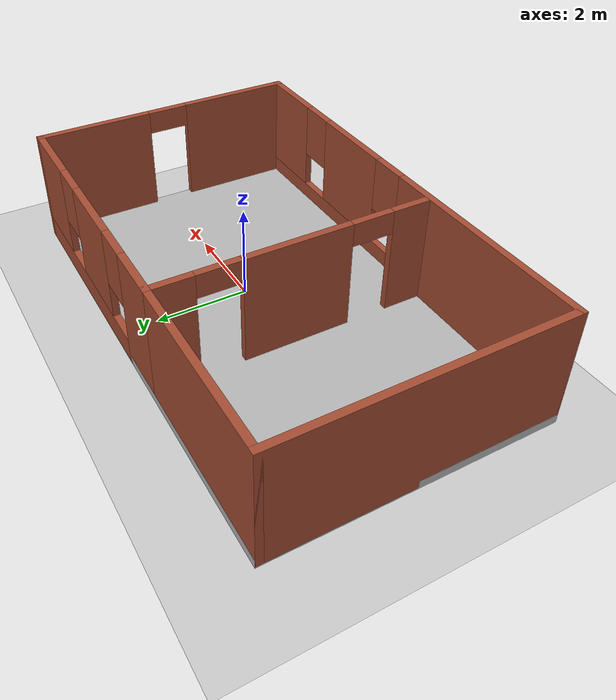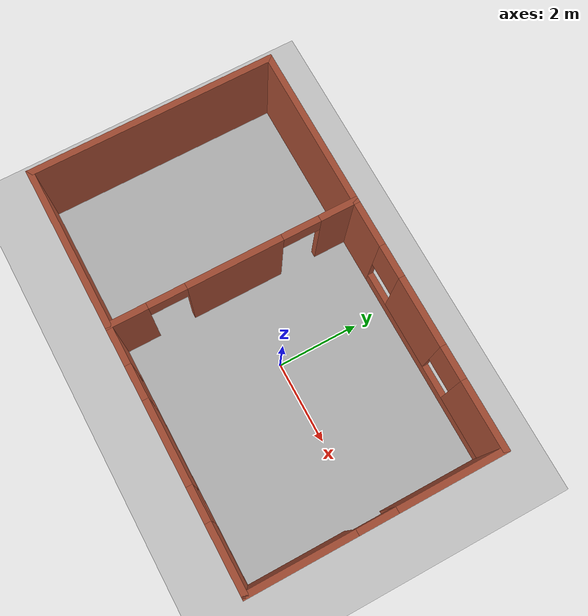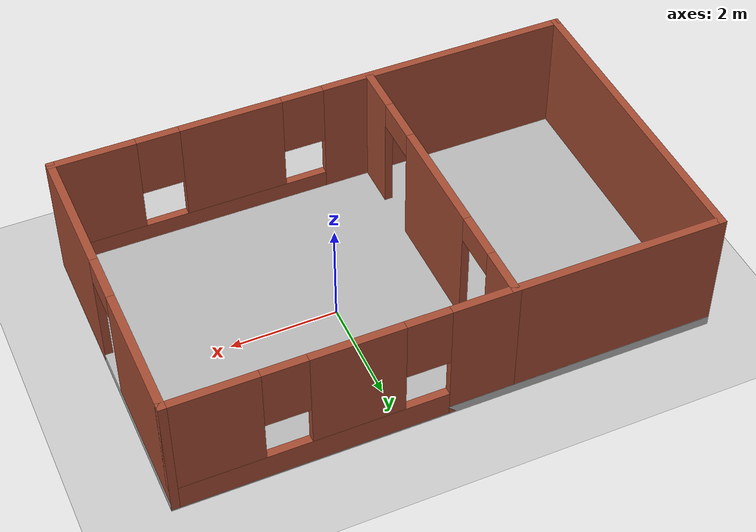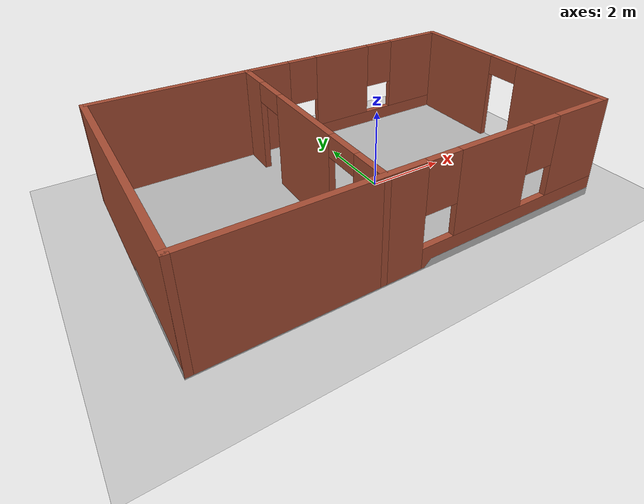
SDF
<sdf version="1.7">
 <world name="default">
  <model name="ground_plane">
   <static>1</static>
   <link name="link">
    <collision name="collision">
     <geometry><plane><normal>0 0 1</normal><size>100 100</size></plane></geometry>
     <surface><friction><ode><mu>100</mu><mu2>50</mu2></ode></friction></surface>
    </collision>
    <visual name="visual">
     <cast_shadows>0</cast_shadows>
     <geometry><plane><normal>0 0 1</normal><size>100 100</size></plane></geometry>
     <material>
      <script><uri>file://media/materials/scripts/gazebo.material</uri><name>Gazebo/Grey</name></script>
     </material>
    </visual>
   </link>
  </model>
  <gravity>0 0 -9.8</gravity>
  <magnetic_field>6e-06 2.3e-05 -4.2e-05</magnetic_field>
  <atmosphere type="adiabatic"/>
  <physics type="ode">
   <max_step_size>0.001</max_step_size>
   <real_time_factor>1</real_time_factor>
   <real_time_update_rate>1000</real_time_update_rate>
  </physics>
  <scene><ambient>0.4 0.4 0.4 1</ambient><background>0.7 0.7 0.7 1</background><shadows>1</shadows></scene>
  <audio><device>default</device></audio>
  <spherical_coordinates>
   <surface_model>EARTH_WGS84</surface_model>
   <latitude_deg>0</latitude_deg>
   <longitude_deg>0</longitude_deg>
   <elevation>0</elevation>
   <heading_deg>0</heading_deg>
  </spherical_coordinates>
  <model name="custom_wall">
   <static>1</static>
   <link name="link">
    <collision name="collision"><geometry><box><size>10 0.2 6</size></box></geometry></collision>
    <visual name="visual">
     <geometry><box><size>10 0.2 6</size></box></geometry>
     <material>
      <script>
       <uri>model://construction_floor/materials/scripts</uri>
       <uri>model://construction_floor/materials/textures</uri>
       <name>CustomWall/SandPattern</name>
      </script>
     </material>
    </visual>
   </link>
   <pose>-0.9 -0.1 0.075 -1.57 -0 3.14</pose>
  </model>
  <light name="sun" type="directional">
   <pose>5.02221 -1.38021 10 0 -0 0</pose>
   <diffuse>0.8 0.8 0.8 1</diffuse>
   <specular>0.2 0.2 0.2 1</specular>
   <attenuation>
    <range>1000</range>
    <constant>0.9</constant>
    <linear>0.01</linear>
    <quadratic>0.001</quadratic>
   </attenuation>
   <direction>-0.5 0.1 -0.9</direction>
  </light>
  <model name="construction_site">
   <pose>-0.9 -0.1 0.0175 0 -0 1.57</pose>
   <link name="Wall_0">
    <pose>-2.925 -0 0 0 -0 -1.5708</pose>
    <visual name="Wall_0_Visual_0">
     <pose>-2.5736 0 1.25 0 -0 0</pose>
     <geometry><box><size>4.8528 0.15 2.5</size></box></geometry>
     <material>
      <script><uri>file://media/materials/scripts/gazebo.material</uri><name>Gazebo/Bricks</name></script>
      <ambient>1 1 1 1</ambient>
     </material>
     <meta><layer>0</layer></meta>
    </visual>
    <collision name="Wall_0_Collision_0">
     <geometry><box><size>4.8528 0.15 2.5</size></box></geometry>
     <pose>-2.5736 0 1.25 0 -0 0</pose>
    </collision>
    <visual name="Wall_0_Visual_1">
     <pose>2.4264 0 0.25 0 -0 0</pose>
     <geometry><box><size>5.1472 0.15 0.5</size></box></geometry>
     <material>
      <script><uri>file://media/materials/scripts/gazebo.material</uri><name>Gazebo/Bricks</name></script>
      <ambient>1 1 1 1</ambient>
     </material>
     <meta><layer>0</layer></meta>
    </visual>
    <collision name="Wall_0_Collision_1">
     <geometry><box><size>5.1472 0.15 0.5</size></box></geometry>
     <pose>2.4264 0 0.25 0 -0 0</pose>
    </collision>
    <visual name="Wall_0_Visual_2">
     <pose>1.62179 0 1.5 0 -0 0</pose>
     <geometry><box><size>1.93799 0.15 2</size></box></geometry>
     <material>
      <script><uri>file://media/materials/scripts/gazebo.material</uri><name>Gazebo/Bricks</name></script>
      <ambient>1 1 1 1</ambient>
     </material>
     <meta><layer>0</layer></meta>
    </visual>
    <collision name="Wall_0_Collision_2">
     <geometry><box><size>1.93799 0.15 2</size></box></geometry>
     <pose>1.62179 0 1.5 0 -0 0</pose>
    </collision>
    <visual name="Wall_0_Visual_3">
     <pose>4.19539 0 1.5 0 -0 0</pose>
     <geometry><box><size>1.60921 0.15 2</size></box></geometry>
     <material>
      <script><uri>file://media/materials/scripts/gazebo.material</uri><name>Gazebo/Bricks</name></script>
      <ambient>1 1 1 1</ambient>
     </material>
     <meta><layer>0</layer></meta>
    </visual>
    <collision name="Wall_0_Collision_3">
     <geometry><box><size>1.60921 0.15 2</size></box></geometry>
     <pose>4.19539 0 1.5 0 -0 0</pose>
    </collision>
    <visual name="Wall_0_Visual_4">
     <pose>0.252797 0 1.9 0 -0 0</pose>
     <geometry><box><size>0.8 0.15 1.2</size></box></geometry>
     <material>
      <script><uri>file://media/materials/scripts/gazebo.material</uri><name>Gazebo/Bricks</name></script>
      <ambient>1 1 1 1</ambient>
     </material>
     <meta><layer>0</layer></meta>
    </visual>
    <collision name="Wall_0_Collision_4">
     <geometry><box><size>0.8 0.15 1.2</size></box></geometry>
     <pose>0.252797 0 1.9 0 -0 0</pose>
    </collision>
    <visual name="Wall_0_Visual_5">
     <pose>2.99079 0 1.9 0 -0 0</pose>
     <geometry><box><size>0.8 0.15 1.2</size></box></geometry>
     <material>
      <script><uri>file://media/materials/scripts/gazebo.material</uri><name>Gazebo/Bricks</name></script>
      <ambient>1 1 1 1</ambient>
     </material>
     <meta><layer>0</layer></meta>
    </visual>
    <collision name="Wall_0_Collision_5">
     <geometry><box><size>0.8 0.15 1.2</size></box></geometry>
     <pose>2.99079 0 1.9 0 -0 0</pose>
    </collision>
   </link>
   <link name="Wall_11">
    <collision name="Wall_11_Collision">
     <geometry><box><size>6 0.15 2.5</size></box></geometry>
     <pose>0 0 1.25 0 -0 0</pose>
    </collision>
    <visual name="Wall_11_Visual">
     <pose>0 0 1.25 0 -0 0</pose>
     <geometry><box><size>6 0.15 2.5</size></box></geometry>
     <material>
      <script><uri>file://media/materials/scripts/gazebo.material</uri><name>Gazebo/Bricks</name></script>
      <ambient>1 1 1 1</ambient>
     </material>
     <meta><layer>0</layer></meta>
    </visual>
    <pose>0 4.925 0 0 -0 0</pose>
   </link>
   <link name="Wall_13">
    <collision name="Wall_13_Collision">
     <geometry><box><size>4 0.15 2.5</size></box></geometry>
     <pose>0 0 1.25 0 -0 0</pose>
    </collision>
    <visual name="Wall_13_Visual">
     <pose>0 0 1.25 0 -0 0</pose>
     <geometry><box><size>4 0.15 2.5</size></box></geometry>
     <material>
      <script><uri>file://media/materials/scripts/gazebo.material</uri><name>Gazebo/Bricks</name></script>
      <ambient>1 1 1 1</ambient>
     </material>
     <meta><layer>0</layer></meta>
    </visual>
    <pose>2.925 3 0 0 -0 -1.5708</pose>
   </link>
   <link name="Wall_15">
    <pose>0 1.075 0 0 -0 3.14159</pose>
    <visual name="Wall_15_Visual_0">
     <pose>-2.52676 0 1.25 0 -0 0</pose>
     <geometry><box><size>0.94649 0.15 2.5</size></box></geometry>
     <material>
      <script><uri>file://media/materials/scripts/gazebo.material</uri><name>Gazebo/Bricks</name></script>
      <ambient>1 1 1 1</ambient>
     </material>
     <meta><layer>0</layer></meta>
    </visual>
    <collision name="Wall_15_Collision_0">
     <geometry><box><size>0.94649 0.15 2.5</size></box></geometry>
     <pose>-2.52676 0 1.25 0 -0 0</pose>
    </collision>
    <visual name="Wall_15_Visual_1">
     <pose>-0.014148 0 1.25 0 -0 0</pose>
     <geometry><box><size>2.27872 0.15 2.5</size></box></geometry>
     <material>
      <script><uri>file://media/materials/scripts/gazebo.material</uri><name>Gazebo/Bricks</name></script>
      <ambient>1 1 1 1</ambient>
     </material>
     <meta><layer>0</layer></meta>
    </visual>
    <collision name="Wall_15_Collision_1">
     <geometry><box><size>2.27872 0.15 2.5</size></box></geometry>
     <pose>-0.014148 0 1.25 0 -0 0</pose>
    </collision>
    <visual name="Wall_15_Visual_2">
     <pose>2.51261 0 1.25 0 -0 0</pose>
     <geometry><box><size>0.974786 0.15 2.5</size></box></geometry>
     <material>
      <script><uri>file://media/materials/scripts/gazebo.material</uri><name>Gazebo/Bricks</name></script>
      <ambient>1 1 1 1</ambient>
     </material>
     <meta><layer>0</layer></meta>
    </visual>
    <collision name="Wall_15_Collision_2">
     <geometry><box><size>0.974786 0.15 2.5</size></box></geometry>
     <pose>2.51261 0 1.25 0 -0 0</pose>
    </collision>
    <visual name="Wall_15_Visual_3">
     <pose>-1.60351 0 2.25 0 -0 0</pose>
     <geometry><box><size>0.9 0.15 0.5</size></box></geometry>
     <material>
      <script><uri>file://media/materials/scripts/gazebo.material</uri><name>Gazebo/Bricks</name></script>
      <ambient>1 1 1 1</ambient>
     </material>
     <meta><layer>0</layer></meta>
    </visual>
    <collision name="Wall_15_Collision_3">
     <geometry><box><size>0.9 0.15 0.5</size></box></geometry>
     <pose>-1.60351 0 2.25 0 -0 0</pose>
    </collision>
    <visual name="Wall_15_Visual_4">
     <pose>1.57521 0 2.25 0 -0 0</pose>
     <geometry><box><size>0.9 0.15 0.5</size></box></geometry>
     <material>
      <script><uri>file://media/materials/scripts/gazebo.material</uri><name>Gazebo/Bricks</name></script>
      <ambient>1 1 1 1</ambient>
     </material>
     <meta><layer>0</layer></meta>
    </visual>
    <collision name="Wall_15_Collision_4">
     <geometry><box><size>0.9 0.15 0.5</size></box></geometry>
     <pose>1.57521 0 2.25 0 -0 0</pose>
    </collision>
   </link>
   <link name="Wall_17">
    <pose>0 -4.925 0 0 -0 0</pose>
    <visual name="Wall_17_Visual_0">
     <pose>-1.72877 0 1.25 0 -0 0</pose>
     <geometry><box><size>2.54245 0.15 2.5</size></box></geometry>
     <material>
      <script><uri>file://media/materials/scripts/gazebo.material</uri><name>Gazebo/Bricks</name></script>
      <ambient>1 1 1 1</ambient>
     </material>
     <meta><layer>0</layer></meta>
    </visual>
    <collision name="Wall_17_Collision_0">
     <geometry><box><size>2.54245 0.15 2.5</size></box></geometry>
     <pose>-1.72877 0 1.25 0 -0 0</pose>
    </collision>
    <visual name="Wall_17_Visual_1">
     <pose>1.72123 0 1.25 0 -0 0</pose>
     <geometry><box><size>2.55755 0.15 2.5</size></box></geometry>
     <material>
      <script><uri>file://media/materials/scripts/gazebo.material</uri><name>Gazebo/Bricks</name></script>
      <ambient>1 1 1 1</ambient>
     </material>
     <meta><layer>0</layer></meta>
    </visual>
    <collision name="Wall_17_Collision_1">
     <geometry><box><size>2.55755 0.15 2.5</size></box></geometry>
     <pose>1.72123 0 1.25 0 -0 0</pose>
    </collision>
    <visual name="Wall_17_Visual_2">
     <pose>-0.007545 0 2.25 0 -0 0</pose>
     <geometry><box><size>0.9 0.15 0.5</size></box></geometry>
     <material>
      <script><uri>file://media/materials/scripts/gazebo.material</uri><name>Gazebo/Bricks</name></script>
      <ambient>1 1 1 1</ambient>
     </material>
     <meta><layer>0</layer></meta>
    </visual>
    <collision name="Wall_17_Collision_2">
     <geometry><box><size>0.9 0.15 0.5</size></box></geometry>
     <pose>-0.007545 0 2.25 0 -0 0</pose>
    </collision>
   </link>
   <link name="Wall_19">
    <pose>2.925 -1.925 0 0 -0 -1.5708</pose>
    <visual name="Wall_19_Visual_0">
     <pose>-2.46593 0 1.25 0 -0 0</pose>
     <geometry><box><size>1.21815 0.15 2.5</size></box></geometry>
     <material>
      <script><uri>file://media/materials/scripts/gazebo.material</uri><name>Gazebo/Bricks</name></script>
      <ambient>1 1 1 1</ambient>
     </material>
     <meta><layer>0</layer></meta>
    </visual>
    <collision name="Wall_19_Collision_0">
     <geometry><box><size>1.21815 0.15 2.5</size></box></geometry>
     <pose>-2.46593 0 1.25 0 -0 0</pose>
    </collision>
    <visual name="Wall_19_Visual_1">
     <pose>0.609073 0 0.25 0 -0 0</pose>
     <geometry><box><size>4.93185 0.15 0.5</size></box></geometry>
     <material>
      <script><uri>file://media/materials/scripts/gazebo.material</uri><name>Gazebo/Bricks</name></script>
      <ambient>1 1 1 1</ambient>
     </material>
     <meta><layer>0</layer></meta>
    </visual>
    <collision name="Wall_19_Collision_1">
     <geometry><box><size>4.93185 0.15 0.5</size></box></geometry>
     <pose>0.609073 0 0.25 0 -0 0</pose>
    </collision>
    <visual name="Wall_19_Visual_2">
     <pose>-0.226297 0 1.5 0 -0 0</pose>
     <geometry><box><size>1.66111 0.15 2</size></box></geometry>
     <material>
      <script><uri>file://media/materials/scripts/gazebo.material</uri><name>Gazebo/Bricks</name></script>
      <ambient>1 1 1 1</ambient>
     </material>
     <meta><layer>0</layer></meta>
    </visual>
    <collision name="Wall_19_Collision_2">
     <geometry><box><size>1.66111 0.15 2</size></box></geometry>
     <pose>-0.226297 0 1.5 0 -0 0</pose>
    </collision>
    <visual name="Wall_19_Visual_3">
     <pose>2.23963 0 1.5 0 -0 0</pose>
     <geometry><box><size>1.67074 0.15 2</size></box></geometry>
     <material>
      <script><uri>file://media/materials/scripts/gazebo.material</uri><name>Gazebo/Bricks</name></script>
      <ambient>1 1 1 1</ambient>
     </material>
     <meta><layer>0</layer></meta>
    </visual>
    <collision name="Wall_19_Collision_3">
     <geometry><box><size>1.67074 0.15 2</size></box></geometry>
     <pose>2.23963 0 1.5 0 -0 0</pose>
    </collision>
    <visual name="Wall_19_Visual_4">
     <pose>-1.45686 0 1.9 0 -0 0</pose>
     <geometry><box><size>0.8 0.15 1.2</size></box></geometry>
     <material>
      <script><uri>file://media/materials/scripts/gazebo.material</uri><name>Gazebo/Bricks</name></script>
      <ambient>1 1 1 1</ambient>
     </material>
     <meta><layer>0</layer></meta>
    </visual>
    <collision name="Wall_19_Collision_4">
     <geometry><box><size>0.8 0.15 1.2</size></box></geometry>
     <pose>-1.45686 0 1.9 0 -0 0</pose>
    </collision>
    <visual name="Wall_19_Visual_5">
     <pose>1.00426 0 1.9 0 -0 0</pose>
     <geometry><box><size>0.8 0.15 1.2</size></box></geometry>
     <material>
      <script><uri>file://media/materials/scripts/gazebo.material</uri><name>Gazebo/Bricks</name></script>
      <ambient>1 1 1 1</ambient>
     </material>
     <meta><layer>0</layer></meta>
    </visual>
    <collision name="Wall_19_Collision_5">
     <geometry><box><size>0.8 0.15 1.2</size></box></geometry>
     <pose>1.00426 0 1.9 0 -0 0</pose>
    </collision>
   </link>
   <static>1</static>
  </model>
 </world>
</sdf>
